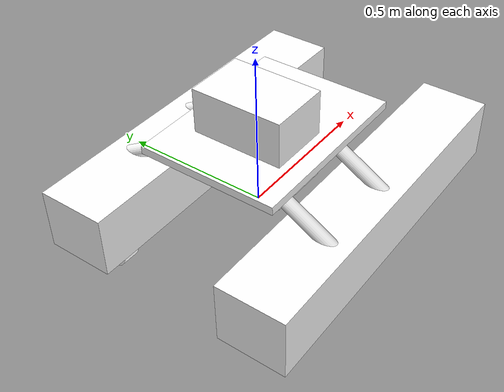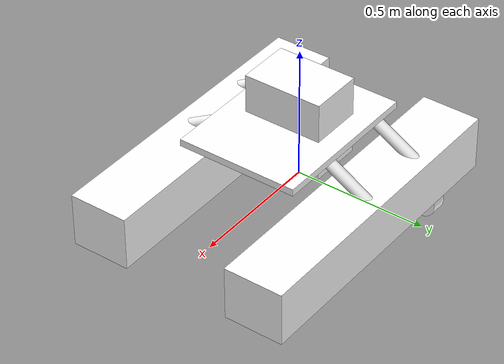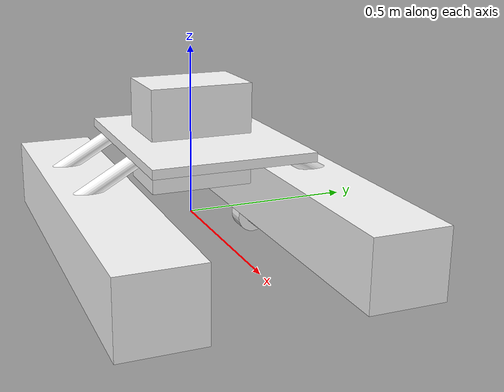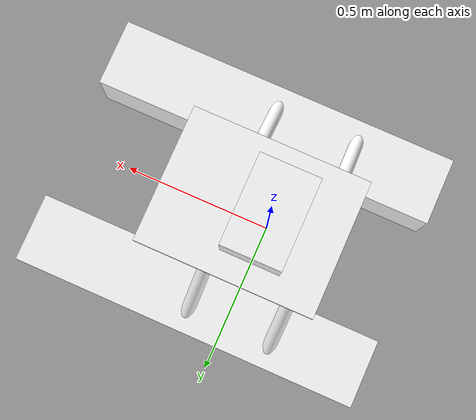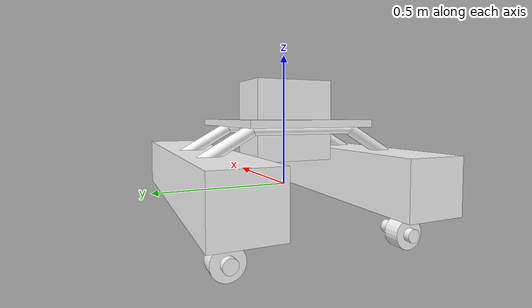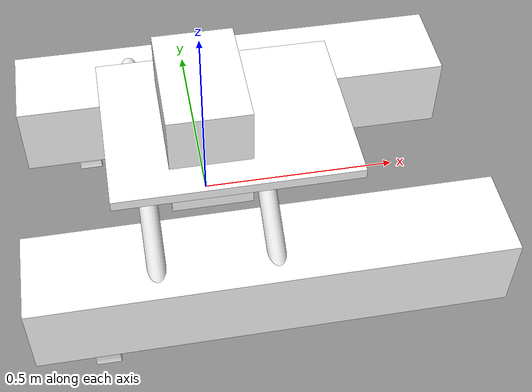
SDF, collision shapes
<?xml version="1.0"?>
<sdf version="1.6">
  <model name="pep_bot">
    <link name="base_link">
      <inertial>
        <pose>0 0 -0.2 0 0 0</pose>
        <mass>10</mass>
        <inertia>
          <ixx>0.5666666666666668</ixx>
          <ixy>0</ixy>
          <ixz>0</ixz>
          <iyy>1.0416666666666667</iyy>
          <iyz>0</iyz>
          <izz>1.5416666666666667</izz>
        </inertia>
      </inertial>
      <visual name="visual">
        <geometry>
          <mesh>
            <uri>file://roboboat01/meshes/roboboat01.dae</uri>
          </mesh>
        </geometry>
        <material>
          <diffuse>1.0 1.0 1.0</diffuse>
          <specular>1.0 1.0 1.0</specular>
          <pbr>
            <metal>
              <albedo_map>file://roboboat01/materials/textures/Boat01_Albedo.png</albedo_map>
              <normal_map>file://roboboat01/materials/textures/Boat01_Normal.png</normal_map>
              <roughness_map>file://roboboat01/materials/textures/Boat01_Roughness.png</roughness_map>
              <metalness_map>file://roboboat01/materials/textures/Boat01_Metallic.png</metalness_map>
            </metal>
          </pbr>
          <!-- fallback to script if no PBR support-->
          <script>
            <uri>file://roboboat01/materials/scripts/</uri>
            <uri>file://roboboat01/materials/textures/</uri>
            <name>Fallback/Boat01_Diffuse</name>
          </script>
        </material>
      </visual>

      <collision name="Box011">
        <pose>0.110046 0.314338 0.0352701 0.0 0.0 0.0</pose>
        <geometry>
          <box>
            <size>1.14985 0.223203 0.202172</size>
          </box>
        </geometry>
      </collision>
      <collision name="Box012">
        <pose>0.110046 -0.31434 0.0352701 0.0 0.0 0.0</pose>
        <geometry>
          <box>
            <size>1.14985 0.223203 0.202172</size>
          </box>
        </geometry>
      </collision>
      <collision name="Box013">
        <pose>0.0549115 0.0 0.240029 0.0 0.0 0.0</pose>
        <geometry>
          <box>
            <size>0.598409 0.459244 0.0260934</size>
          </box>
        </geometry>
      </collision>
      <collision name="Cylinder262">
        <pose>-0.158378 0.290814 0.162712 1.0472 0.0 0.0</pose>
        <geometry>
          <cylinder>
            <length>0.222664</length>
            <radius>0.0222591</radius>
          </cylinder>
        </geometry>
      </collision>
      <collision name="Cylinder263">
        <pose>-0.158378 -0.290814 0.162712 -1.0472 0.0 0.0</pose>
        <geometry>
          <cylinder>
            <length>0.222664</length>
            <radius>0.0222591</radius>
          </cylinder>
        </geometry>
      </collision>
      <collision name="Cylinder264">
        <pose>0.12101 0.290814 0.162712 1.0472 0.0 0.0</pose>
        <geometry>
          <cylinder>
            <length>0.222664</length>
            <radius>0.0222591</radius>
          </cylinder>
        </geometry>
      </collision>
      <collision name="Cylinder265">
        <pose>0.12101 -0.290814 0.162712 -1.0472 0.0 0.0</pose>
        <geometry>
          <cylinder>
            <length>0.222664</length>
            <radius>0.0222591</radius>
          </cylinder>
        </geometry>
      </collision>
      <collision name="Cylinder266">
        <pose>0.12101 -0.000654578 0.21655 1.5708 0.0 0.0</pose>
        <geometry>
          <cylinder>
            <length>0.409041</length>
            <radius>0.0155011</radius>
          </cylinder>
        </geometry>
      </collision>
      <collision name="Cylinder267">
        <pose>-0.15838 -0.000654578 0.21655 1.5708 0.0 0.0</pose>
        <geometry>
          <cylinder>
            <length>0.409041</length>
            <radius>0.0155011</radius>
          </cylinder>
        </geometry>
      </collision>

      <!-- CPU case -->
      <visual name="visual_cpubox">
        <pose>0.0 0.0 0.25 0 0 0</pose>
        <geometry>
          <mesh>
            <uri>file://roboboat_cpubox/meshes/drybox.dae</uri>
          </mesh>
        </geometry>
        <material>
          <diffuse>1.0 1.0 1.0</diffuse>
          <specular>1.0 1.0 1.0</specular>
          <pbr>
            <metal>
              <albedo_map>file://roboboat_cpubox/materials/textures/DryBox_Albedo.png</albedo_map>
              <roughness_map>file://roboboat_cpubox/materials/textures/DryBox_Roughness.png</roughness_map>
            </metal>
          </pbr>
        </material>
      </visual>
      <collision name="cpu_box">
        <pose>0 0 0.25 0 0 0</pose>
        <geometry>
          <box>
            <size>0.2 0.3 0.3</size>
          </box>
        </geometry>
      </collision>

      <!-- Uncomment to add GPS sensor -->
      <visual name="gps_visual">
        <pose>0.3 0.0 0.25 0 0 0</pose>
        <geometry>
          <mesh>
            <uri>file://pep_bot/meshes/gps.dae</uri>
          </mesh>
        </geometry>
      </visual>
    </link>

    <!-- Left thruster housing -->
    <link name="left_housing_link">
      <inertial>
        <pose>-0.3 0.33 -0.15 0 0 0</pose>
        <mass>1</mass>
        <inertia>
          <ixx>0.0020290833333333333</ixx>
          <ixy>0</ixy>
          <ixz>0</ixz>
          <iyy>0.002408333333333333</iyy>
          <iyz>0</iyz>
          <izz>0.0006874166666666666</izz>
        </inertia>
      </inertial>

      <visual name="left_housing_visual">
        <pose>-0.3 0.33 -0.15 0 0 0</pose>
        <geometry>
          <mesh>
            <uri>file://roboboat01/meshes/housing.dae</uri>
          </mesh>
        </geometry>
        <material>
          <diffuse>1.0 1.0 1.0</diffuse>
          <specular>1.0 1.0 1.0</specular>
          <pbr>
            <metal>
              <albedo_map>file://roboboat01/materials/textures/Thruster_Albedo.png</albedo_map>
              <roughness_map>file://roboboat01/materials/textures/Thruster_Roughness.png</roughness_map>
            </metal>
          </pbr>
        </material>
      </visual>

      <visual name="left_mount_visual">
        <pose>-0.3 0.33 -0.15 0 0 0</pose>
        <geometry>
          <mesh>
            <uri>file://roboboat01/meshes/mount.dae</uri>
          </mesh>
        </geometry>
        <material>
          <diffuse>1.0 1.0 1.0</diffuse>
          <specular>1.0 1.0 1.0</specular>
          <pbr>
            <metal>
              <albedo_map>file://roboboat01/materials/textures/Thruster_Albedo.png</albedo_map>
              <roughness_map>file://roboboat01/materials/textures/Thruster_Roughness.png</roughness_map>
            </metal>
          </pbr>
        </material>
      </visual>

      <collision name="Box011d">
        <pose>-0.3 0.33 -0.049048999999999995 0.0 0.0 0.0</pose>
        <geometry>
          <box>
            <size>0.0810453 0.0430519 0.070925</size>
          </box>
        </geometry>
      </collision>

      <collision name="Cylinder264d">
        <pose>-0.3 0.33 -0.08719339999999999 0.0 0.0 0.0</pose>
        <geometry>
          <cylinder>
            <length>0.125613</length>
            <radius>0.014703</radius>
          </cylinder>
        </geometry>
      </collision>

      <collision name="Cylinder263d">
        <pose>-0.2833463 0.32986701 -0.15 1.5708 0.0 -1.5708</pose>
        <geometry>
          <cylinder>
            <length>0.14376</length>
            <radius>0.0243692</radius>
          </cylinder>
        </geometry>
      </collision>
    </link>

    <!-- Left propeller -->
    <link name="left_prop_link">
      <inertial>
        <pose>-0.300872875 0.329867016 -0.15 1.5708 0.0 -1.5708</pose>
        <mass>0.1</mass>
        <inertia>
          <ixx>0.00010562499999999999</ixx>
          <ixy>0</ixy>
          <ixz>0</ixz>
          <iyy>0.00010562499999999999</iyy>
          <iyz>0</iyz>
          <izz>0.00015125000000000002</izz>
        </inertia>
      </inertial>
      <visual name="left_prop_visual">
        <pose>-0.3 0.33 -0.15 0 0 0</pose>
        <geometry>
          <mesh>
            <uri>file://roboboat01/meshes/prop.dae</uri>
          </mesh>
        </geometry>
        <material>
          <diffuse>1.0 1.0 1.0</diffuse>
          <specular>1.0 1.0 1.0</specular>
          <pbr>
            <metal>
              <albedo_map>file://roboboat01/materials/textures/Thruster_Albedo.png</albedo_map>
              <roughness_map>file://roboboat01/materials/textures/Thruster_Roughness.png</roughness_map>
            </metal>
          </pbr>
        </material>
      </visual>

      <collision name="Cylinder262d">
        <pose>-0.300872875 0.329867016 -0.15 1.5708 0.0 -1.5708</pose>
        <geometry>
          <cylinder>
            <length>0.0608172</length>
            <radius>0.0553844</radius>
          </cylinder>
        </geometry>
      </collision>
    </link>

    <!-- Right thruster housing -->
    <link name="right_housing_link">
      <inertial>
        <pose>-0.3 -0.33 -0.15 0 0 0</pose>
        <mass>1</mass>
        <inertia>
          <ixx>0.0020290833333333333</ixx>
          <ixy>0</ixy>
          <ixz>0</ixz>
          <iyy>0.002408333333333333</iyy>
          <iyz>0</iyz>
          <izz>0.0006874166666666666</izz>
        </inertia>
      </inertial>
      <visual name="right_housing_visual">
        <pose>-0.3 -0.33 -0.15 0 0 0</pose>
        <geometry>
          <mesh>
            <uri>file://roboboat01/meshes/housing.dae</uri>
          </mesh>
        </geometry>
        <material>
          <diffuse>1.0 1.0 1.0</diffuse>
          <specular>1.0 1.0 1.0</specular>
          <pbr>
            <metal>
              <albedo_map>file://roboboat01/materials/textures/Thruster_Albedo.png</albedo_map>
              <roughness_map>file://roboboat01/materials/textures/Thruster_Roughness.png</roughness_map>
            </metal>
          </pbr>
        </material>
      </visual>

      <visual name="right_mount_visual">
        <pose>-0.3 -0.33 -0.15 0 0 0</pose>
        <geometry>
          <mesh>
            <uri>file://roboboat01/meshes/mount.dae</uri>
          </mesh>
        </geometry>
        <material>
          <diffuse>1.0 1.0 1.0</diffuse>
          <specular>1.0 1.0 1.0</specular>
          <pbr>
            <metal>
              <albedo_map>file://roboboat01/materials/textures/Thruster_Albedo.png</albedo_map>
              <roughness_map>file://roboboat01/materials/textures/Thruster_Roughness.png</roughness_map>
            </metal>
          </pbr>
        </material>
      </visual>

      <!-- Thruster collisions -->
      <collision name="Box011i">
        <pose>-0.3 -0.33 -0.049048999999999995 0.0 0.0 0.0</pose>
        <geometry>
          <box>
            <size>0.0810453 0.0430519 0.070925</size>
          </box>
        </geometry>
      </collision>

      <collision name="Cylinder264i">
        <pose>-0.3 -0.33 -0.08719339999999999 0.0 0.0 0.0</pose>
        <geometry>
          <cylinder>
            <length>0.125613</length>
            <radius>0.014703</radius>
          </cylinder>
        </geometry>
      </collision>

      <collision name="Cylinder263i">
        <pose>-0.2833463 -0.32986701 -0.15 1.5708 0.0 -1.5708</pose>
        <geometry>
          <cylinder>
            <length>0.14376</length>
            <radius>0.0243692</radius>
          </cylinder>
        </geometry>
      </collision>
    </link>

    <!-- Right propeller -->
    <link name="right_prop_link">
      <inertial>
        <pose>-0.300872875 -0.329867016 -0.15 1.5708 0.0 -1.5708</pose>
        <mass>0.1</mass>
        <inertia>
          <ixx>0.00010562499999999999</ixx>
          <ixy>0</ixy>
          <ixz>0</ixz>
          <iyy>0.00010562499999999999</iyy>
          <iyz>0</iyz>
          <izz>0.00015125000000000002</izz>
        </inertia>
      </inertial>
      <visual name="right_prop_visual">
        <pose>-0.3 -0.33 -0.15 0 0 0</pose>
        <geometry>
          <mesh>
            <uri>file://roboboat01/meshes/prop.dae</uri>
          </mesh>
        </geometry>
        <material>
          <diffuse>1.0 1.0 1.0</diffuse>
          <specular>1.0 1.0 1.0</specular>
          <pbr>
            <metal>
              <albedo_map>file://roboboat01/materials/textures/Thruster_Albedo.png</albedo_map>
              <roughness_map>file://roboboat01/materials/textures/Thruster_Roughness.png</roughness_map>
            </metal>
          </pbr>
        </material>
      </visual>

      <collision name="Cylinder262i">
        <pose>-0.300872875 -0.329867016 -0.15 1.5708 0.0 -1.5708</pose>
        <geometry>
          <cylinder>
            <length>0.0608172</length>
            <radius>0.0553844</radius>
          </cylinder>
        </geometry>
      </collision>
    </link>

    <!-- RGBD Camera  -->
    <link name="camera_link"/>

    <link name="camera_rgbd_frame">
      <inertial>
        <pose>0.069 -0.047 0.107 0 0 0</pose>
        <inertia>
          <ixx>0.001</ixx>
          <ixy>0.000</ixy>
          <ixz>0.000</ixz>
          <iyy>0.001</iyy>
          <iyz>0.000</iyz>
          <izz>0.001</izz>
        </inertia>
        <mass>0.035</mass>
      </inertial>

      <pose>0.069 -0.047 0.107 0 0 0</pose>
      <sensor name="rgbd_camera" type="rgbd_camera">
        <camera>
          <horizontal_fov>1.047</horizontal_fov>
          <image>
            <width>320</width>
            <height>240</height>
          </image>
          <clip>
            <near>0.1</near>
            <far>100</far>
          </clip>
        </camera>
        <always_on>1</always_on>
        <update_rate>30</update_rate>
        <visualize>true</visualize>
        <topic>
          rgbd_camera</topic>
        <enable_metrics>true</enable_metrics>
      </sensor>
    </link>

    <joint name="camera_joint" type="fixed">
      <parent>base_link</parent>
      <child>camera_link</child>
      <pose>0.064 -0.065 0.094 0 0 0</pose>
      <axis>
        <xyz>0 0 1</xyz>
      </axis>
    </joint>

    <joint name="camera_rgbd_joint" type="fixed">
      <parent>camera_link</parent>
      <child>camera_rgbd_frame</child>
      <pose>0.005 0.018 0.013 0 0 0</pose>
      <axis>
        <xyz>0 0 1</xyz>
      </axis>
    </joint>

    <!-- Chassis-left engine joint -->
    <joint name="left_chasis_engine_joint" type="revolute">
      <pose>-0.300872875 0.329867016 -0.15 1.5708 0.0 0</pose>
      <axis>
        <xyz>0 1 0</xyz>
        <limit>
          <!-- Uncomment to control the position of the thruster joint -->
          <lower>0</lower>
          <upper>0</upper>
          <effort>10</effort>
          <velocity>10</velocity>
        </limit>
      </axis>
      <parent>base_link</parent>
      <child>left_housing_link</child>
    </joint>

    <!-- Left joint housing-propeller -->
    <joint name="left_engine_propeller_joint" type="revolute">
      <axis>
        <xyz>1 0 0</xyz>
        <limit>
          <effort>100</effort>
          <velocity>100</velocity>
        </limit>
        <dynamics>
          <friction>0.05</friction>
          <damping>0.05</damping>
        </dynamics>
      </axis>
      <parent>left_housing_link</parent>
      <child>left_prop_link</child>
    </joint>

    <!-- Chassis-right engine joint -->
    <joint name="right_chasis_engine_joint" type="revolute">
      <pose>-0.300872875 -0.329867016 -0.15 1.5708 0.0 0</pose>
      <axis>
        <xyz>0 1 0</xyz>
        <limit>
          <!-- Uncomment to control the position of the thruster joint -->
          <lower>0</lower>
          <upper>0</upper>
          <effort>10</effort>
          <velocity>10</velocity>
        </limit>
      </axis>
      <parent>base_link</parent>
      <child>right_housing_link</child>
    </joint>

    <!-- Right joint housing-propeller -->
    <joint name="right_engine_propeller_joint" type="revolute">
      <axis>
        <xyz>1 0 0</xyz>
        <limit>
          <effort>100</effort>
          <velocity>100</velocity>
        </limit>
        <dynamics>
          <friction>0.05</friction>
          <damping>0.05</damping>
        </dynamics>
      </axis>
      <parent>right_housing_link</parent>
      <child>right_prop_link</child>
    </joint>

    <!-- Left hull -->
    <plugin
      filename="libSurface.so"
      name="vrx::Surface">
      <link_name>base_link</link_name>
      <hull_length>1.15</hull_length>
      <hull_radius>0.12</hull_radius>
      <fluid_level>0.1</fluid_level>
      <points>
        <point>0.68 0.314338 0.0352701</point>
        <point>-0.465 0.314338 0.0352701</point>
      </points>
      <wavefield>
        <topic>/vrx/wavefield/parameters</topic>
      </wavefield>
    </plugin>

    <!-- Right hull -->
    <plugin
      filename="libSurface.so"
      name="vrx::Surface">
      <link_name>base_link</link_name>
      <hull_length>1.15</hull_length>
      <hull_radius>0.12</hull_radius>
      <fluid_level>0.1</fluid_level>
      <points>
        <point>0.68 -0.314338 0.0352701</point>
        <point>-0.465 -0.314338 0.0352701</point>
      </points>
      <wavefield>
        <topic>/vrx/wavefield/parameters</topic>
      </wavefield>
    </plugin>

    <plugin
      filename="libSimpleHydrodynamics.so"
      name="vrx::SimpleHydrodynamics">
      <link_name>base_link</link_name>
      <!-- Added mass -->
      <xDotU>0.0</xDotU>
      <yDotV>0.0</yDotV>
      <nDotR>0.0</nDotR>
      <!-- Linear and quadratic drag -->
      <xU>4.0</xU>
      <xUU>6.0</xUU>
      <yV>4.0</yV>
      <yVV>4.0</yVV>
      <zW>20.0</zW>
      <kP>12.0</kP>
      <kPP>24.0</kPP>
      <mQ>36.0</mQ>
      <mQQ>35.0</mQQ>
      <nR>32.0</nR>
      <nRR>32.0</nRR>
    </plugin>

    <plugin
      filename="gz-sim-thruster-system"
      name="gz::sim::systems::Thruster">
      <joint_name>left_engine_propeller_joint</joint_name>
      <thrust_coefficient>0.0001</thrust_coefficient>
      <fluid_density>1000</fluid_density>
      <propeller_diameter>0.1</propeller_diameter>
      <velocity_control>true</velocity_control>
    </plugin>

    <plugin
      filename="gz-sim-thruster-system"
      name="gz::sim::systems::Thruster">
      <joint_name>right_engine_propeller_joint</joint_name>
      <thrust_coefficient>0.0001</thrust_coefficient>
      <fluid_density>1000</fluid_density>
      <propeller_diameter>0.1</propeller_diameter>
      <velocity_control>true</velocity_control>
    </plugin>

  </model>
</sdf>
